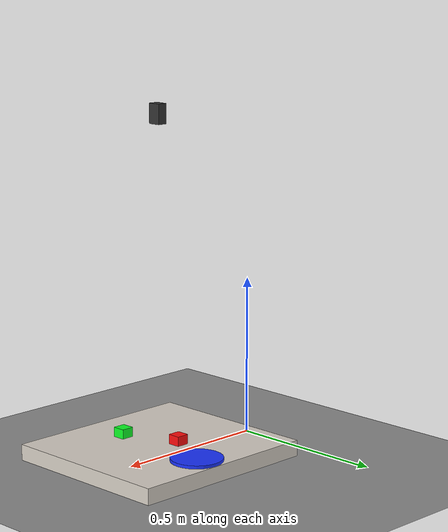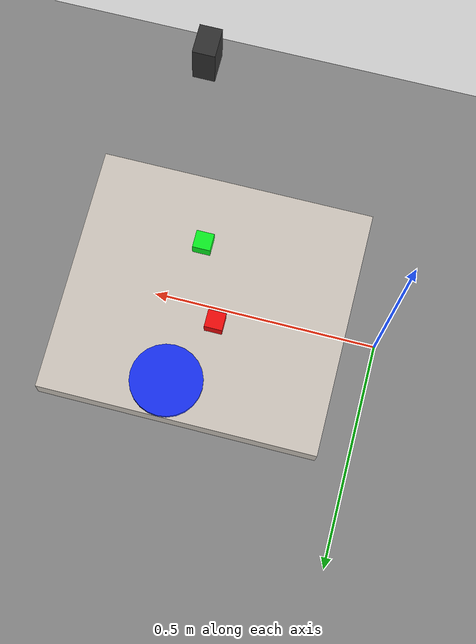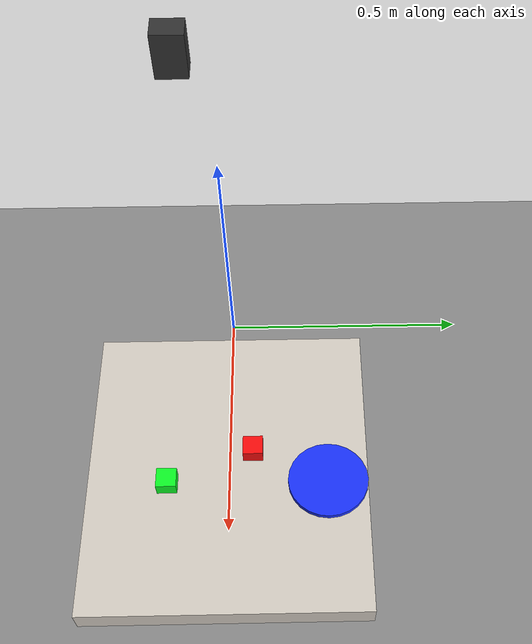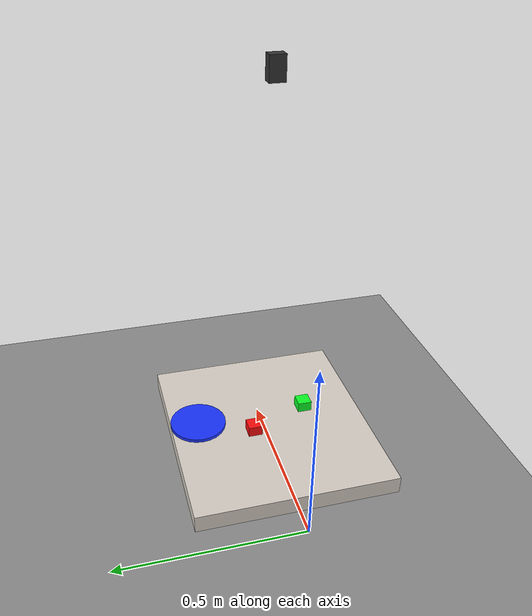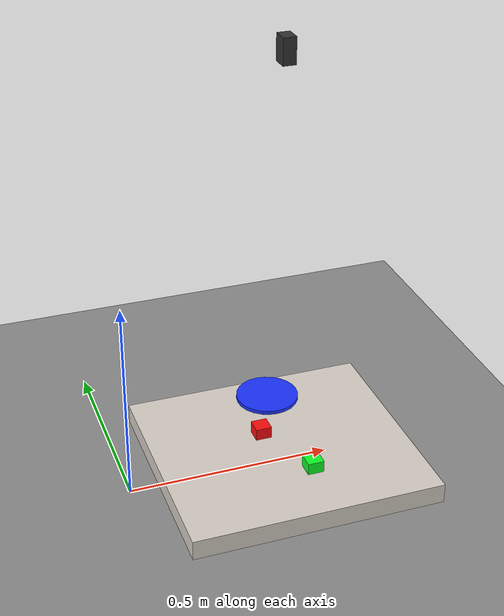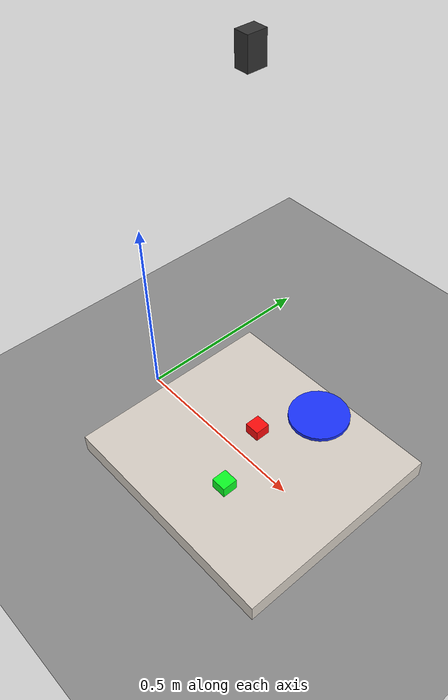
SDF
<?xml version="1.0" ?>
<!-- SDF 1.8 for ign-gazebo 6 GUI compatibility (1.9 World component breaks GUI scene sync). -->
<sdf version="1.8">
  <world name="pick_place_desk">
    <physics name="default_physics" type="ode">
      <max_step_size>0.001</max_step_size>
      <real_time_factor>1.0</real_time_factor>
    </physics>

    <plugin filename="gz-sim-physics-system" name="gz::sim::systems::Physics"/>
    <plugin filename="gz-sim-user-commands-system" name="gz::sim::systems::UserCommands"/>
    <plugin filename="gz-sim-scene-broadcaster-system" name="gz::sim::systems::SceneBroadcaster"/>
    <plugin filename="gz-sim-sensors-system" name="gz::sim::systems::Sensors">
      <render_engine>ogre</render_engine>
    </plugin>

    <light name="sun" type="directional">
      <cast_shadows>true</cast_shadows>
      <pose>0 0 10 0 0.6 0</pose>
      <diffuse>0.9 0.9 0.9 1</diffuse>
      <specular>0.3 0.3 0.3 1</specular>
      <direction>-0.5 0.1 -1</direction>
    </light>

    <!-- Default view: look at desk center from front-right -->
    <gui fullscreen="0">
      <camera name="user_camera">
        <pose>0.75 -0.55 0.45 0 0.35 2.0</pose>
        <view_controller>orbit</view_controller>
        <projection_type>perspective</projection_type>
      </camera>
    </gui>

    <model name="ground_plane">
      <static>true</static>
      <link name="link">
        <collision name="collision">
          <geometry><plane><normal>0 0 1</normal><size>100 100</size></plane></geometry>
        </collision>
        <visual name="visual">
          <geometry><plane><normal>0 0 1</normal><size>100 100</size></plane></geometry>
          <material>
            <ambient>0.45 0.45 0.45 1</ambient>
            <diffuse>0.55 0.55 0.55 1</diffuse>
          </material>
        </visual>
      </link>
    </model>

    <model name="work_table">
      <static>true</static>
      <pose>0.38 0 0.025 0 0 0</pose>
      <link name="link">
        <collision name="collision">
          <geometry><box><size>0.62 0.56 0.05</size></box></geometry>
        </collision>
        <visual name="visual">
          <geometry><box><size>0.62 0.56 0.05</size></box></geometry>
          <material>
            <ambient>0.75 0.72 0.68 1</ambient>
            <diffuse>0.85 0.82 0.78 1</diffuse>
          </material>
        </visual>
      </link>
    </model>

    <model name="red_block_01">
      <pose>0.35 0.05 0.06 0 0 0</pose>
      <link name="link">
        <collision name="collision">
          <geometry><box><size>0.04 0.04 0.04</size></box></geometry>
        </collision>
        <visual name="visual">
          <geometry><box><size>0.04 0.04 0.04</size></box></geometry>
          <material>
            <ambient>1 0 0 1</ambient>
            <diffuse>1 0.05 0.05 1</diffuse>
            <specular>0.1 0.1 0.1 1</specular>
            <emissive>0.85 0.05 0.05 1</emissive>
          </material>
        </visual>
      </link>
    </model>

    <model name="blue_plate_01">
      <pose>0.42 0.20 0.055 0 0 0</pose>
      <link name="link">
        <collision name="collision">
          <geometry><cylinder><radius>0.08</radius><length>0.01</length></cylinder></geometry>
        </collision>
        <visual name="visual">
          <geometry><cylinder><radius>0.08</radius><length>0.01</length></cylinder></geometry>
          <material>
            <ambient>0.05 0.1 1 1</ambient>
            <diffuse>0.1 0.2 1 1</diffuse>
            <specular>0.1 0.1 0.1 1</specular>
            <emissive>0.05 0.1 0.85 1</emissive>
          </material>
        </visual>
      </link>
    </model>

    <model name="green_block_01">
      <pose>0.42 -0.12 0.06 0 0 0</pose>
      <link name="link">
        <collision name="collision">
          <geometry><box><size>0.04 0.04 0.04</size></box></geometry>
        </collision>
        <visual name="visual">
          <geometry><box><size>0.04 0.04 0.04</size></box></geometry>
          <material>
            <ambient>0 1 0.1 1</ambient>
            <diffuse>0.05 1 0.15 1</diffuse>
            <specular>0.1 0.1 0.1 1</specular>
            <emissive>0.05 0.85 0.1 1</emissive>
          </material>
        </visual>
      </link>
    </model>

<!-- Inlined (avoid model:// URI — GUI often fails to resolve include) -->
    <model name="overhead_camera">
      <static>true</static>
      <pose>0.38 0 1.05 0 1.5708 0</pose>
      <link name="camera_link">
        <visual name="housing">
          <geometry><box><size>0.06 0.04 0.03</size></box></geometry>
          <material>
            <ambient>0.15 0.15 0.15 1</ambient>
            <diffuse>0.2 0.2 0.2 1</diffuse>
          </material>
        </visual>
        <sensor name="rgbd" type="rgbd_camera">
          <always_on>true</always_on>
          <update_rate>30</update_rate>
          <visualize>false</visualize>
          <topic>overhead_camera</topic>
          <camera>
            <horizontal_fov>1.047</horizontal_fov>
            <image>
              <width>640</width>
              <height>480</height>
              <format>R8G8B8</format>
            </image>
            <clip>
              <near>0.05</near>
              <far>3.0</far>
            </clip>
          </camera>
        </sensor>
      </link>
    </model>
  </world>
</sdf>
